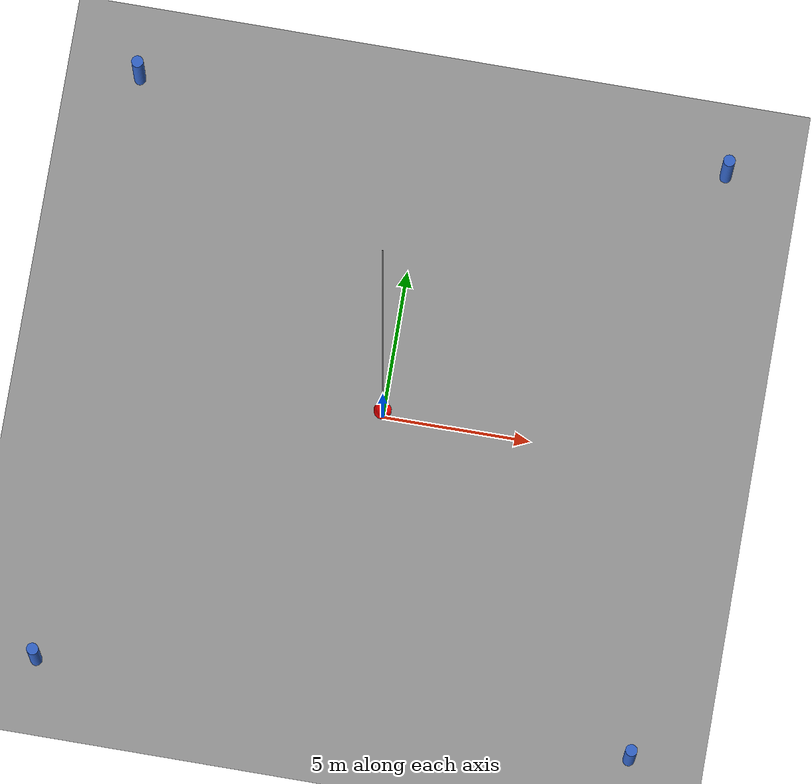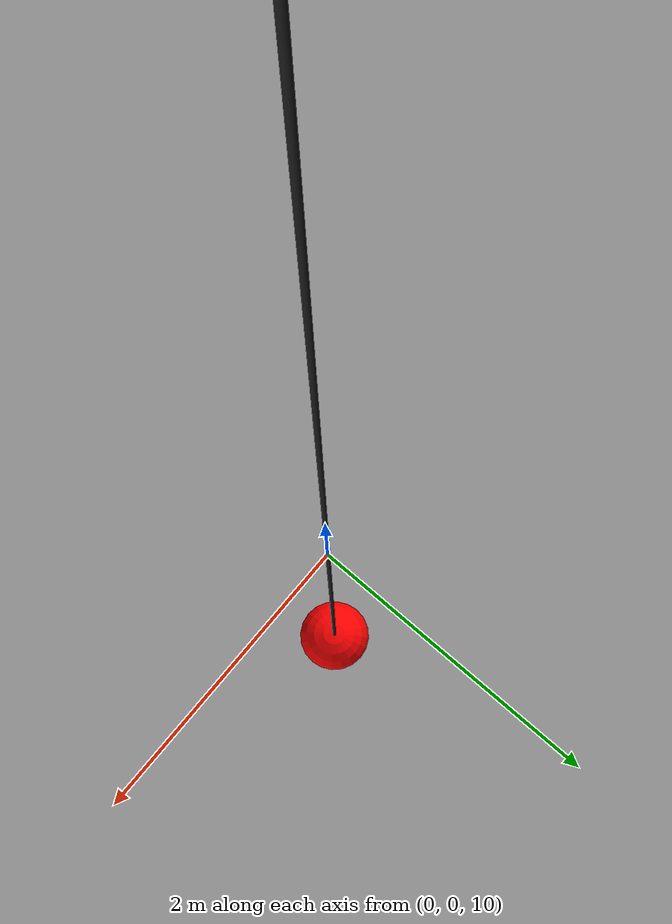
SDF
<?xml version="1.0" ?>
<sdf version="1.9">
  <world name="wirehawk_world">

    <!-- Physics Configuration -->
    <physics name="1ms" type="ignored">
      <max_step_size>0.001</max_step_size>
      <real_time_factor>1.0</real_time_factor>
    </physics>
    <plugin filename="gz-sim-physics-system" name="gz::sim::systems::Physics"/>
    <plugin filename="gz-sim-user-commands-system" name="gz::sim::systems::UserCommands"/>
    <plugin filename="gz-sim-scene-broadcaster-system" name="gz::sim::systems::SceneBroadcaster"/>

    <!-- Environment & Lighting -->
    <scene>
      <ambient>0.5 0.5 0.5 1.0</ambient>
      <background>0.7 0.8 0.95 1.0</background>
      <grid>true</grid>
    </scene>

    <light type="directional" name="sun">
      <cast_shadows>true</cast_shadows>
      <pose>0 0 10 0 0 0</pose>
      <diffuse>0.8 0.8 0.8 1</diffuse>
      <direction>-0.5 0.1 -0.9</direction>
    </light>

    <!-- Ground Plane (Roof) -->
    <model name="roof">
      <static>true</static>
      <link name="link">
        <collision name="collision">
          <geometry><plane><normal>0 0 1</normal><size>25 25</size></plane></geometry>
        </collision>
        <visual name="visual">
          <geometry><plane><normal>0 0 1</normal><size>25 25</size></plane></geometry>
          <material>
            <ambient>0.6 0.6 0.6 1</ambient>
            <diffuse>0.6 0.6 0.6 1</diffuse>
          </material>
        </visual>
      </link>
    </model>

    <!-- Pillar 1 (Top Right) -->
    <model name="pillar_1">
      <static>true</static>
      <pose>10 10 1.5 0 0 0</pose>
      <link name="link">
        <visual name="visual">
          <geometry><cylinder><radius>0.2</radius><length>3.0</length></cylinder></geometry>
          <material><ambient>0.2 0.4 0.8 1</ambient><diffuse>0.2 0.4 0.8 1</diffuse></material>
        </visual>
      </link>
    </model>

    <!-- Pillar 2 (Bottom Right) -->
    <model name="pillar_2">
      <static>true</static>
      <pose>10 -10 1.5 0 0 0</pose>
      <link name="link">
        <visual name="visual">
          <geometry><cylinder><radius>0.2</radius><length>3.0</length></cylinder></geometry>
          <material><ambient>0.2 0.4 0.8 1</ambient><diffuse>0.2 0.4 0.8 1</diffuse></material>
        </visual>
      </link>
    </model>

    <!-- Pillar 3 (Bottom Left) -->
    <model name="pillar_3">
      <static>true</static>
      <pose>-10 -10 1.5 0 0 0</pose>
      <link name="link">
        <visual name="visual">
          <geometry><cylinder><radius>0.2</radius><length>3.0</length></cylinder></geometry>
          <material><ambient>0.2 0.4 0.8 1</ambient><diffuse>0.2 0.4 0.8 1</diffuse></material>
        </visual>
      </link>
    </model>

    <!-- Pillar 4 (Top Left) -->
    <model name="pillar_4">
      <static>true</static>
      <pose>-10 10 1.5 0 0 0</pose>
      <link name="link">
        <visual name="visual">
          <geometry><cylinder><radius>0.2</radius><length>3.0</length></cylinder></geometry>
          <material><ambient>0.2 0.4 0.8 1</ambient><diffuse>0.2 0.4 0.8 1</diffuse></material>
        </visual>
      </link>
    </model>

    <!-- 4 Visual Cable Models: Length 32m -->
    <model name="cable_vis_0">
      <static>true</static>
      <link name="link">
        <visual name="v">
          <pose>0 0 16.0 0 0 0</pose>
          <geometry><cylinder><radius>0.015</radius><length>32.0</length></cylinder></geometry>
          <material><ambient>0.1 0.1 0.1 1</ambient><diffuse>0.1 0.1 0.1 1</diffuse></material>
        </visual>
      </link>
    </model>

    <model name="cable_vis_1">
      <static>true</static>
      <link name="link">
        <visual name="v">
          <pose>0 0 16.0 0 0 0</pose>
          <geometry><cylinder><radius>0.015</radius><length>32.0</length></cylinder></geometry>
          <material><ambient>0.1 0.1 0.1 1</ambient><diffuse>0.1 0.1 0.1 1</diffuse></material>
        </visual>
      </link>
    </model>

    <model name="cable_vis_2">
      <static>true</static>
      <link name="link">
        <visual name="v">
          <pose>0 0 16.0 0 0 0</pose>
          <geometry><cylinder><radius>0.015</radius><length>32.0</length></cylinder></geometry>
          <material><ambient>0.1 0.1 0.1 1</ambient><diffuse>0.1 0.1 0.1 1</diffuse></material>
        </visual>
      </link>
    </model>

    <model name="cable_vis_3">
      <static>true</static>
      <link name="link">
        <visual name="v">
          <pose>0 0 16.0 0 0 0</pose>
          <geometry><cylinder><radius>0.015</radius><length>32.0</length></cylinder></geometry>
          <material><ambient>0.1 0.1 0.1 1</ambient><diffuse>0.1 0.1 0.1 1</diffuse></material>
        </visual>
      </link>
    </model>

    <!-- The Payload (Point Mass) -->
    <model name="payload">
      <pose>0 0 1.5 0 0 0</pose>

      <link name="mass_link">
        <inertial>
          <mass>10.0</mass>
          <inertia><ixx>0.1</ixx><iyy>0.1</iyy><izz>0.1</izz><ixy>0</ixy><ixz>0</ixz><iyz>0</iyz></inertia>
        </inertial>
        <collision name="collision">
          <geometry><sphere><radius>0.3</radius></sphere></geometry>
        </collision>
        <visual name="visual">
          <geometry><sphere><radius>0.3</radius></sphere></geometry>
          <material>
            <ambient>1.0 0.0 0.0 1</ambient>
            <diffuse>1.0 0.0 0.0 1</diffuse>
          </material>
        </visual>
      </link>

      <plugin filename="libCableCatenaryPlugin.so" name="wirehawk::CableCatenaryPlugin">
        <linear_density>0.0058</linear_density>
        <axial_stiffness>707000.0</axial_stiffness>
        <max_tension>5000.0</max_tension>
        <payload_drag>50.0</payload_drag>
      </plugin>

    </model>

  </world>
</sdf>
